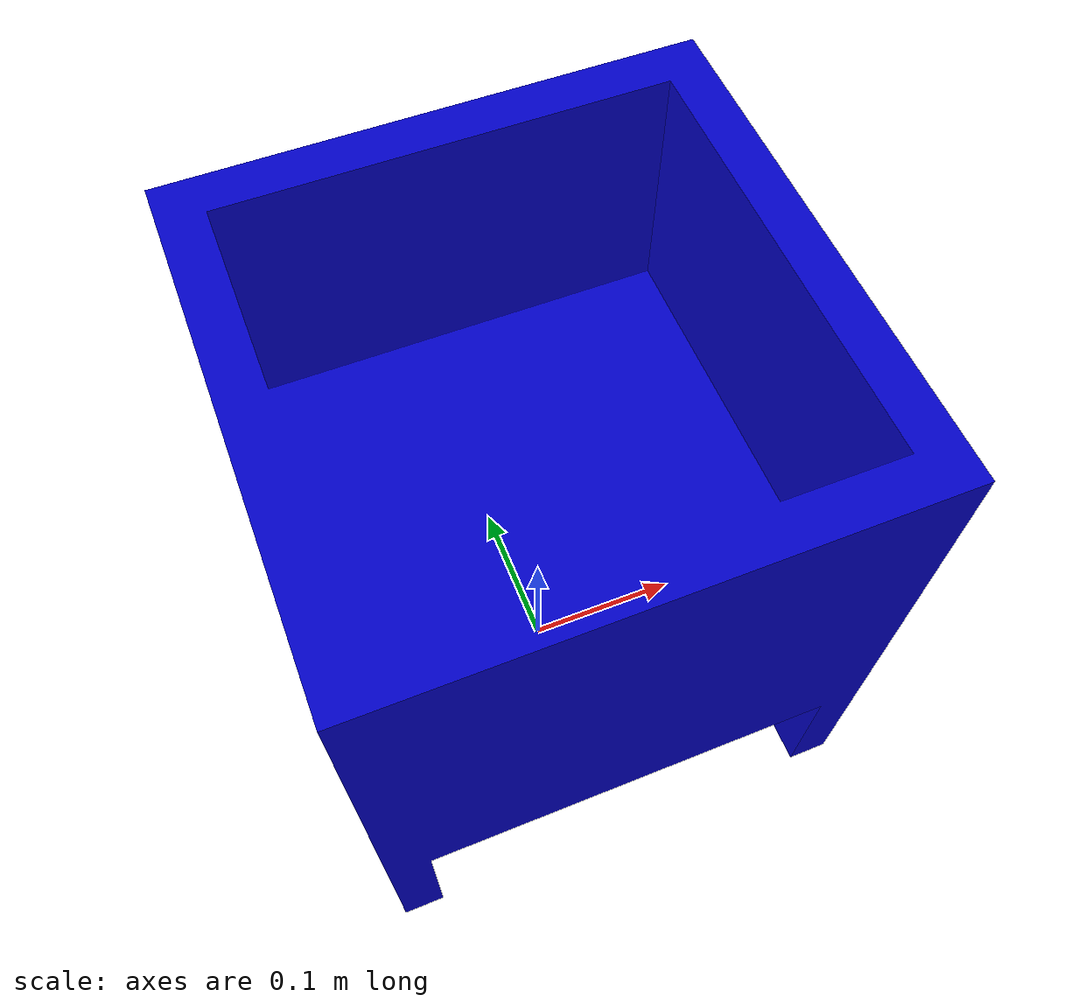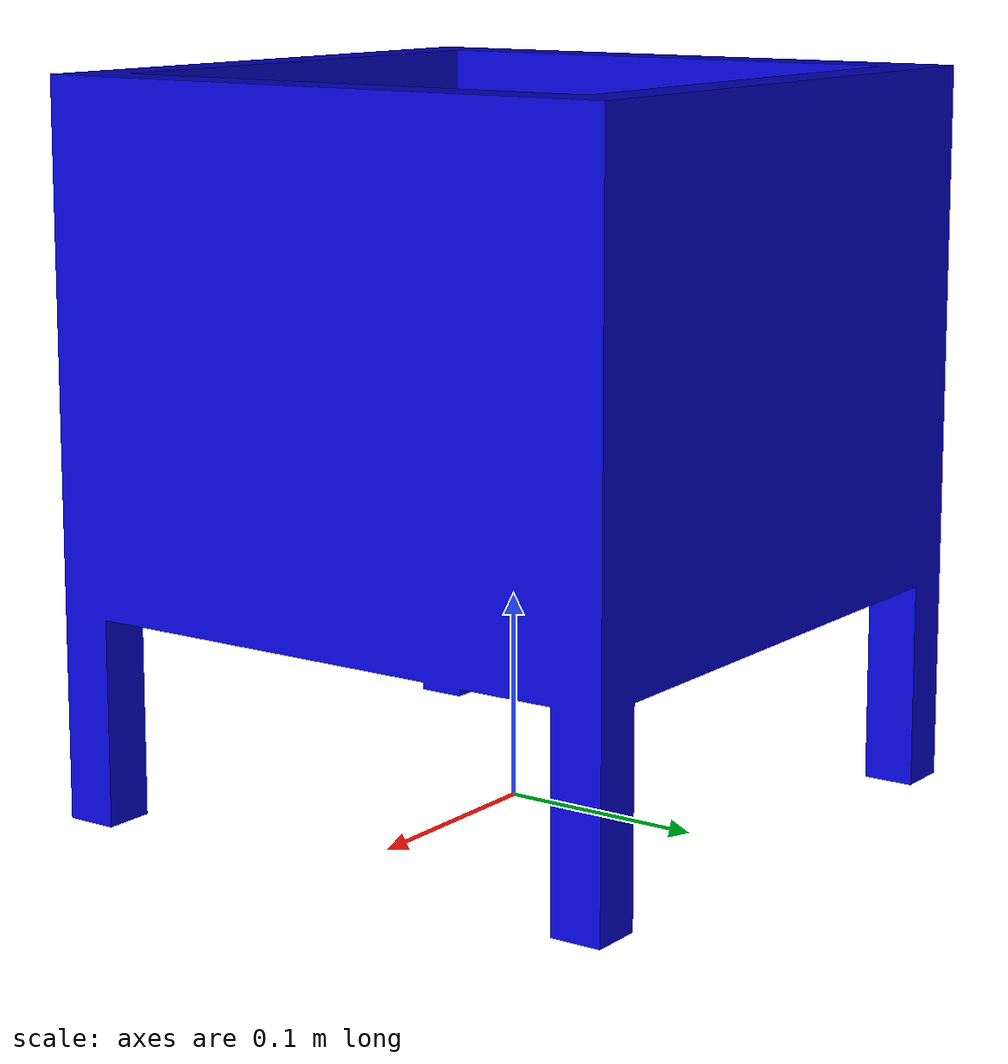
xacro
<?xml version="1.0"?>
<robot name='bin'>

        <link name="world"/>
        <joint name="bin_joint" type="fixed">
            <parent link="world"/>
            <child link="bin_link"/>
        </joint>

        <link name="bin_link">
            <inertial>
                <origin xyz="0.0 0.0 0.0" rpy="0.0 0.0 0.0"/>
                <mass value="6.614"/>
                <inertia ixx="0.098" ixy="0.0" ixz="0.0" iyy="0.098" iyz="0.0" izz="0.123"/>
            </inertial>
            <visual>
                <origin xyz="0.0 0.0 0.0" rpy="0.0 0.0 0.0"/>
                <geometry>
                    <mesh filename="package://pick_and_place/meshes/bin.dae"/>
                </geometry>
            </visual>
            <collision>
                <origin xyz="0.0 0.0 0.0" rpy="0.0 0.0 0.0"/>
                <geometry>
                    <mesh filename="package://pick_and_place/meshes/bin.dae"/>
                </geometry>
            </collision>
        </link>
</robot>
